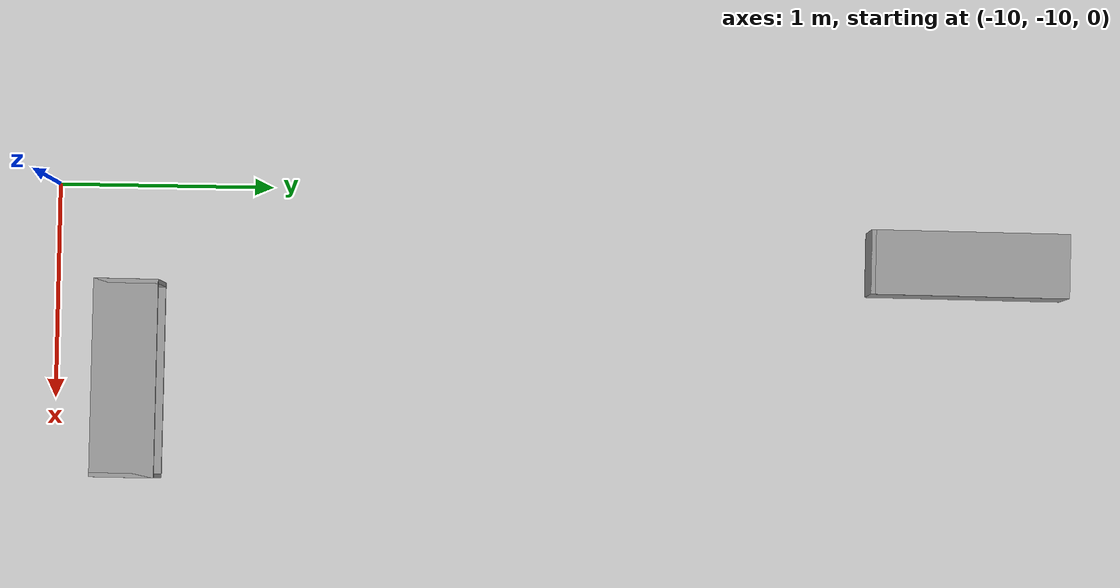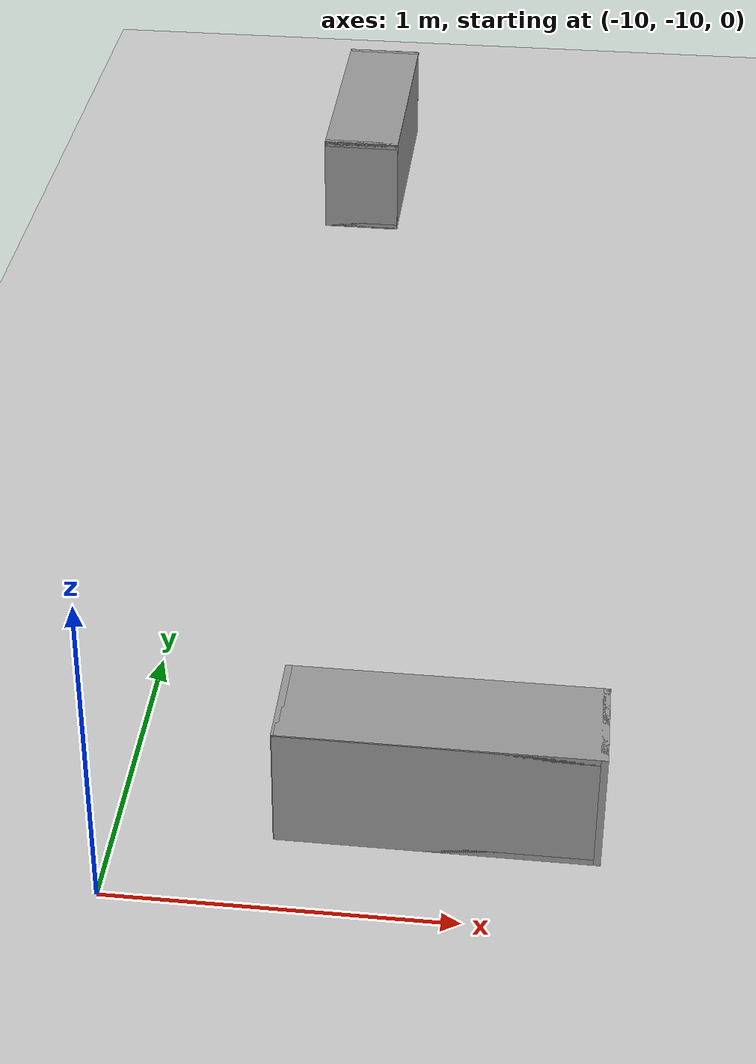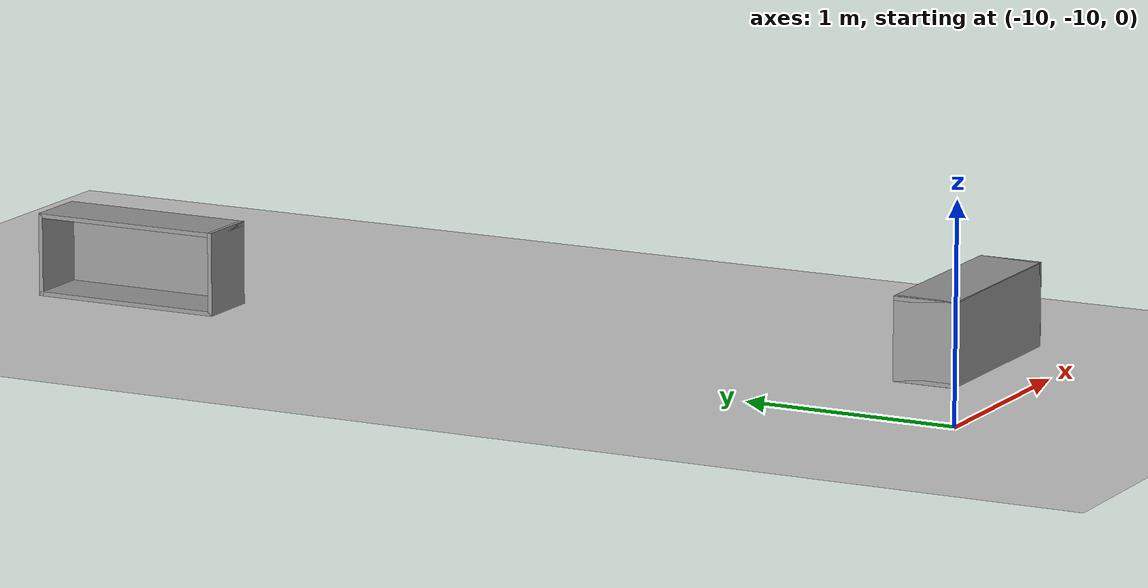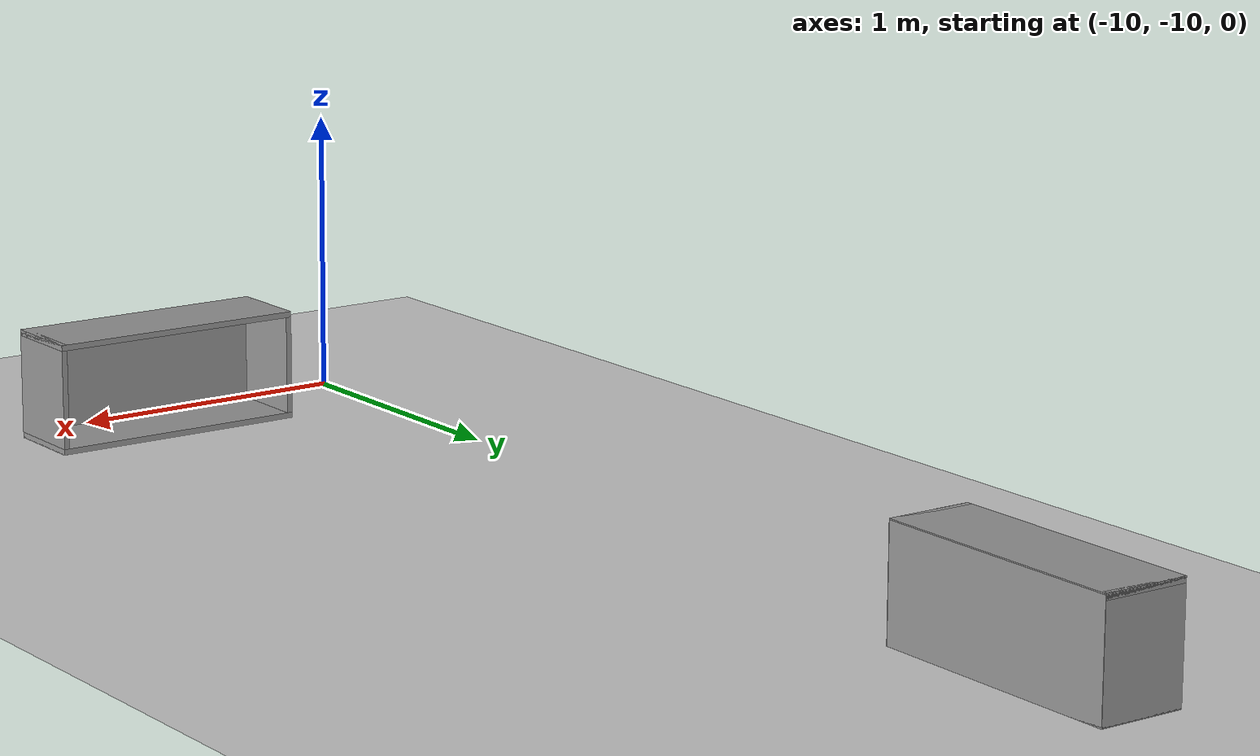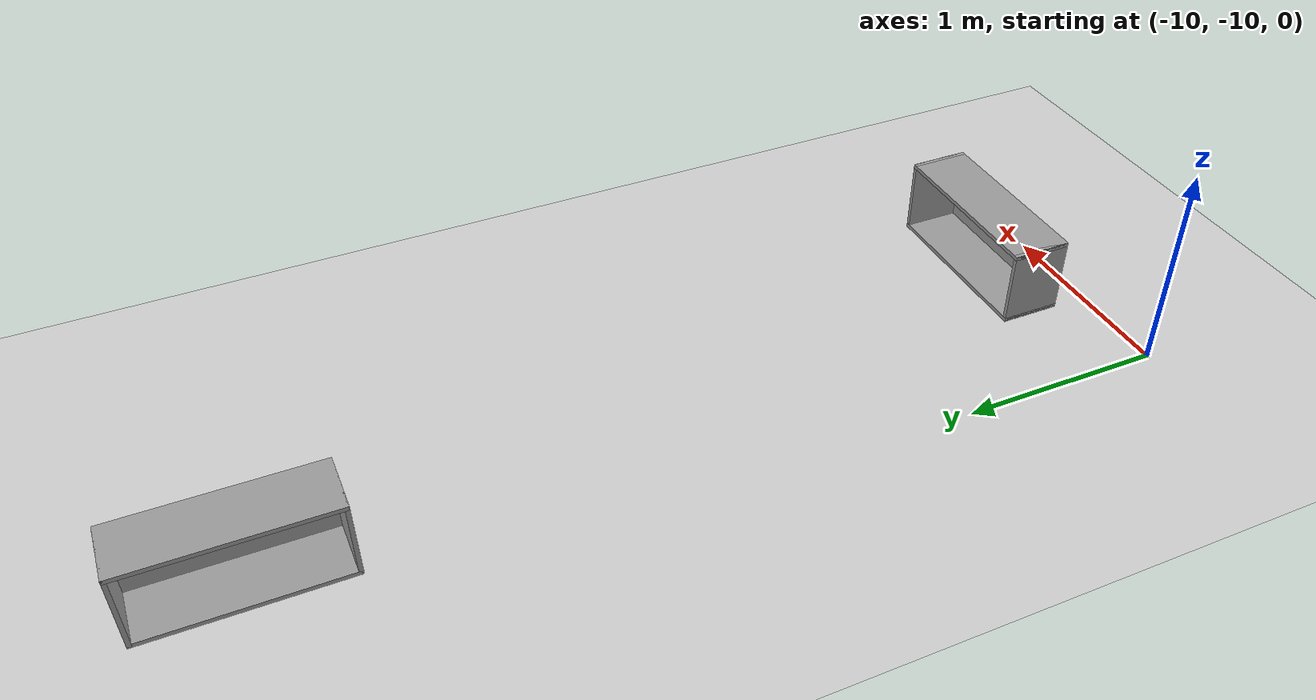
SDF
<sdf version="1.7">
 <world name="default">
  <model name="ground_plane">
   <static>1</static>
   <link name="link">
    <collision name="collision">
     <geometry><plane><normal>0 0 1</normal><size>100 100</size></plane></geometry>
     <surface><friction><ode><mu>100</mu><mu2>50</mu2></ode></friction></surface>
    </collision>
    <visual name="visual">
     <cast_shadows>0</cast_shadows>
     <geometry><plane><normal>0 0 1</normal><size>100 100</size></plane></geometry>
     <material>
      <script><uri>file://media/materials/scripts/gazebo.material</uri><name>Gazebo/Grey</name></script>
     </material>
    </visual>
   </link>
  </model>
  <model name="Wall_Cabinet_36x15W_clone_2">
   <link name="Wall_0">
    <pose>0 0 0.01 0 -0 0</pose>
    <inertial>
     <mass>1.9796</mass>
     <inertia><ixx>0.0145</ixx><iyy>0.1511</iyy><izz>0.1367</izz><ixy>0</ixy><ixz>0</ixz><iyz>0</iyz></inertia>
    </inertial>
    <collision name="Wall_0_Collision"><geometry><box><size>0.91 0.296 0.02</size></box></geometry></collision>
    <visual name="Wall_0_Visual">
     <geometry><box><size>0.91 0.296 0.02</size></box></geometry>
     <material>
      <script><uri>file://media/materials/scripts/gazebo.material</uri><name>Gazebo/Grey</name></script>
      <ambient>1 1 1 1</ambient>
     </material>
    </visual>
   </link>
   <joint name="0_2" type="fixed">
    <pose>-0.455 0 0 0 -0 0</pose>
    <parent>Wall_2</parent>
    <child>Wall_0</child>
    <axis><xyz>0 0 1</xyz><limit><lower>-1e+16</lower><upper>1e+16</upper></limit></axis>
   </joint>
   <joint name="0_4" type="fixed">
    <pose>0.455 0 0 0 -0 0</pose>
    <parent>Wall_4</parent>
    <child>Wall_0</child>
    <axis><xyz>0 0 1</xyz><limit><lower>-1e+16</lower><upper>1e+16</upper></limit></axis>
   </joint>
   <joint name="0_8" type="fixed">
    <pose>0 -0.148 0 0 -0 0</pose>
    <parent>Wall_8</parent>
    <child>Wall_0</child>
    <axis><xyz>0 0 1</xyz><limit><lower>-1e+16</lower><upper>1e+16</upper></limit></axis>
   </joint>
   <link name="Wall_2">
    <pose>-0.445 0 0.192 0 -0 0</pose>
    <inertial>
     <mass>0.8353</mass>
     <inertia><ixx>0.0061</ixx><iyy>0.0164</iyy><izz>0.0103</izz><ixy>0</ixy><ixz>0</ixz><iyz>0</iyz></inertia>
    </inertial>
    <collision name="Wall_2_Collision"><geometry><box><size>0.02 0.296 0.384</size></box></geometry></collision>
    <visual name="Wall_2_Visual">
     <geometry><box><size>0.02 0.296 0.384</size></box></geometry>
     <material>
      <script><uri>file://media/materials/scripts/gazebo.material</uri><name>Gazebo/Grey</name></script>
      <ambient>1 1 1 1</ambient>
     </material>
    </visual>
   </link>
   <link name="Wall_4">
    <pose>0.445 0 0.192 0 -0 0</pose>
    <inertial>
     <mass>0.8353</mass>
     <inertia><ixx>0.0061</ixx><iyy>0.0164</iyy><izz>0.0103</izz><ixy>0</ixy><ixz>0</ixz><iyz>0</iyz></inertia>
    </inertial>
    <collision name="Wall_4_Collision"><geometry><box><size>0.02 0.296 0.384</size></box></geometry></collision>
    <visual name="Wall_4_Visual">
     <geometry><box><size>0.02 0.296 0.384</size></box></geometry>
     <material>
      <script><uri>file://media/materials/scripts/gazebo.material</uri><name>Gazebo/Grey</name></script>
      <ambient>1 1 1 1</ambient>
     </material>
    </visual>
   </link>
   <link name="Wall_6">
    <pose>0 0 0.374 0 -0 0</pose>
    <inertial>
     <mass>1.9796</mass>
     <inertia><ixx>0.0145</ixx><iyy>0.1511</iyy><izz>0.1367</izz><ixy>0</ixy><ixz>0</ixz><iyz>0</iyz></inertia>
    </inertial>
    <collision name="Wall_6_Collision"><geometry><box><size>0.91 0.296 0.02</size></box></geometry></collision>
    <visual name="Wall_6_Visual">
     <geometry><box><size>0.91 0.296 0.02</size></box></geometry>
     <material>
      <script><uri>file://media/materials/scripts/gazebo.material</uri><name>Gazebo/Grey</name></script>
      <ambient>1 1 1 1</ambient>
     </material>
    </visual>
   </link>
   <joint name="6_2" type="fixed">
    <pose>-0.455 0 0 0 -0 0</pose>
    <parent>Wall_2</parent>
    <child>Wall_6</child>
    <axis><xyz>0 0 1</xyz><limit><lower>-1e+16</lower><upper>1e+16</upper></limit></axis>
   </joint>
   <joint name="6_4" type="fixed">
    <pose>0.455 0 0 0 -0 0</pose>
    <parent>Wall_4</parent>
    <child>Wall_6</child>
    <axis><xyz>0 0 1</xyz><limit><lower>-1e+16</lower><upper>1e+16</upper></limit></axis>
   </joint>
   <joint name="6_8" type="fixed">
    <pose>0 -0.148 0 0 -0 0</pose>
    <parent>Wall_8</parent>
    <child>Wall_6</child>
    <axis><xyz>0 0 1</xyz><limit><lower>-1e+16</lower><upper>1e+16</upper></limit></axis>
   </joint>
   <link name="Wall_8">
    <pose>0 -0.138 0.19 0 -0 0</pose>
    <inertial>
     <mass>2.5302</mass>
     <inertia><ixx>0.0305</ixx><iyy>0.1732</iyy><izz>0.2035</izz><ixy>0</ixy><ixz>0</ixz><iyz>0</iyz></inertia>
    </inertial>
    <collision name="Wall_8_Collision"><geometry><box><size>0.906 0.02 0.38</size></box></geometry></collision>
    <visual name="Wall_8_Visual">
     <geometry><box><size>0.906 0.02 0.38</size></box></geometry>
     <material>
      <script><uri>file://media/materials/scripts/gazebo.material</uri><name>Gazebo/Grey</name></script>
      <ambient>1 1 1 1</ambient>
     </material>
    </visual>
   </link>
   <joint name="8_2" type="fixed">
    <pose>-0.453 0 0 0 -0 0</pose>
    <parent>Wall_2</parent>
    <child>Wall_8</child>
    <axis><xyz>0 1 0</xyz><limit><lower>-1e+16</lower><upper>1e+16</upper></limit></axis>
   </joint>
   <joint name="8_4" type="fixed">
    <pose>0.453 0 0 0 -0 0</pose>
    <parent>Wall_4</parent>
    <child>Wall_8</child>
    <axis><xyz>0 1 0</xyz><limit><lower>-1e+16</lower><upper>1e+16</upper></limit></axis>
   </joint>
   <static>1</static>
   <pose>-9.67915 -5.77488 0.047595 0 -0 1.56456</pose>
  </model>
  <model name="Wall_Cabinet_36x15W_clone_3">
   <link name="Wall_0">
    <pose>0 0 0.01 0 -0 0</pose>
    <inertial>
     <mass>1.9796</mass>
     <inertia><ixx>0.0145</ixx><iyy>0.1511</iyy><izz>0.1367</izz><ixy>0</ixy><ixz>0</ixz><iyz>0</iyz></inertia>
    </inertial>
    <collision name="Wall_0_Collision"><geometry><box><size>0.91 0.296 0.02</size></box></geometry></collision>
    <visual name="Wall_0_Visual">
     <geometry><box><size>0.91 0.296 0.02</size></box></geometry>
     <material>
      <script><uri>file://media/materials/scripts/gazebo.material</uri><name>Gazebo/Grey</name></script>
      <ambient>1 1 1 1</ambient>
     </material>
    </visual>
   </link>
   <joint name="0_2" type="fixed">
    <pose>-0.455 0 0 0 -0 0</pose>
    <parent>Wall_2</parent>
    <child>Wall_0</child>
    <axis><xyz>0 0 1</xyz><limit><lower>-1e+16</lower><upper>1e+16</upper></limit></axis>
   </joint>
   <joint name="0_4" type="fixed">
    <pose>0.455 0 0 0 -0 0</pose>
    <parent>Wall_4</parent>
    <child>Wall_0</child>
    <axis><xyz>0 0 1</xyz><limit><lower>-1e+16</lower><upper>1e+16</upper></limit></axis>
   </joint>
   <joint name="0_8" type="fixed">
    <pose>0 -0.148 0 0 -0 0</pose>
    <parent>Wall_8</parent>
    <child>Wall_0</child>
    <axis><xyz>0 0 1</xyz><limit><lower>-1e+16</lower><upper>1e+16</upper></limit></axis>
   </joint>
   <link name="Wall_2">
    <pose>-0.445 0 0.192 0 -0 0</pose>
    <inertial>
     <mass>0.8353</mass>
     <inertia><ixx>0.0061</ixx><iyy>0.0164</iyy><izz>0.0103</izz><ixy>0</ixy><ixz>0</ixz><iyz>0</iyz></inertia>
    </inertial>
    <collision name="Wall_2_Collision"><geometry><box><size>0.02 0.296 0.384</size></box></geometry></collision>
    <visual name="Wall_2_Visual">
     <geometry><box><size>0.02 0.296 0.384</size></box></geometry>
     <material>
      <script><uri>file://media/materials/scripts/gazebo.material</uri><name>Gazebo/Grey</name></script>
      <ambient>1 1 1 1</ambient>
     </material>
    </visual>
   </link>
   <link name="Wall_4">
    <pose>0.445 0 0.192 0 -0 0</pose>
    <inertial>
     <mass>0.8353</mass>
     <inertia><ixx>0.0061</ixx><iyy>0.0164</iyy><izz>0.0103</izz><ixy>0</ixy><ixz>0</ixz><iyz>0</iyz></inertia>
    </inertial>
    <collision name="Wall_4_Collision"><geometry><box><size>0.02 0.296 0.384</size></box></geometry></collision>
    <visual name="Wall_4_Visual">
     <geometry><box><size>0.02 0.296 0.384</size></box></geometry>
     <material>
      <script><uri>file://media/materials/scripts/gazebo.material</uri><name>Gazebo/Grey</name></script>
      <ambient>1 1 1 1</ambient>
     </material>
    </visual>
   </link>
   <link name="Wall_6">
    <pose>0 0 0.374 0 -0 0</pose>
    <inertial>
     <mass>1.9796</mass>
     <inertia><ixx>0.0145</ixx><iyy>0.1511</iyy><izz>0.1367</izz><ixy>0</ixy><ixz>0</ixz><iyz>0</iyz></inertia>
    </inertial>
    <collision name="Wall_6_Collision"><geometry><box><size>0.91 0.296 0.02</size></box></geometry></collision>
    <visual name="Wall_6_Visual">
     <geometry><box><size>0.91 0.296 0.02</size></box></geometry>
     <material>
      <script><uri>file://media/materials/scripts/gazebo.material</uri><name>Gazebo/Grey</name></script>
      <ambient>1 1 1 1</ambient>
     </material>
    </visual>
   </link>
   <joint name="6_2" type="fixed">
    <pose>-0.455 0 0 0 -0 0</pose>
    <parent>Wall_2</parent>
    <child>Wall_6</child>
    <axis><xyz>0 0 1</xyz><limit><lower>-1e+16</lower><upper>1e+16</upper></limit></axis>
   </joint>
   <joint name="6_4" type="fixed">
    <pose>0.455 0 0 0 -0 0</pose>
    <parent>Wall_4</parent>
    <child>Wall_6</child>
    <axis><xyz>0 0 1</xyz><limit><lower>-1e+16</lower><upper>1e+16</upper></limit></axis>
   </joint>
   <joint name="6_8" type="fixed">
    <pose>0 -0.148 0 0 -0 0</pose>
    <parent>Wall_8</parent>
    <child>Wall_6</child>
    <axis><xyz>0 0 1</xyz><limit><lower>-1e+16</lower><upper>1e+16</upper></limit></axis>
   </joint>
   <link name="Wall_8">
    <pose>0 -0.138 0.19 0 -0 0</pose>
    <inertial>
     <mass>2.5302</mass>
     <inertia><ixx>0.0305</ixx><iyy>0.1732</iyy><izz>0.2035</izz><ixy>0</ixy><ixz>0</ixz><iyz>0</iyz></inertia>
    </inertial>
    <collision name="Wall_8_Collision"><geometry><box><size>0.906 0.02 0.38</size></box></geometry></collision>
    <visual name="Wall_8_Visual">
     <geometry><box><size>0.906 0.02 0.38</size></box></geometry>
     <material>
      <script><uri>file://media/materials/scripts/gazebo.material</uri><name>Gazebo/Grey</name></script>
      <ambient>1 1 1 1</ambient>
     </material>
    </visual>
   </link>
   <joint name="8_2" type="fixed">
    <pose>-0.453 0 0 0 -0 0</pose>
    <parent>Wall_2</parent>
    <child>Wall_8</child>
    <axis><xyz>0 1 0</xyz><limit><lower>-1e+16</lower><upper>1e+16</upper></limit></axis>
   </joint>
   <joint name="8_4" type="fixed">
    <pose>0.453 0 0 0 -0 0</pose>
    <parent>Wall_4</parent>
    <child>Wall_8</child>
    <axis><xyz>0 1 0</xyz><limit><lower>-1e+16</lower><upper>1e+16</upper></limit></axis>
   </joint>
   <static>1</static>
   <pose>-9.08782 -9.63949 0.047595 0 0 -0.003742</pose>
  </model>
 </world>
</sdf>
